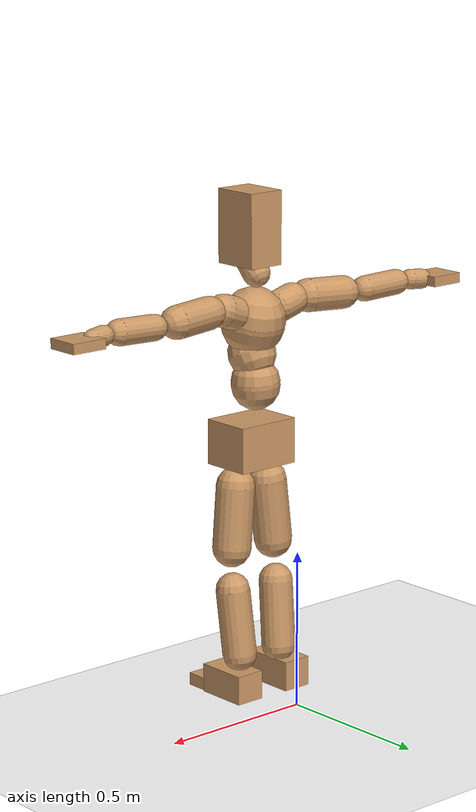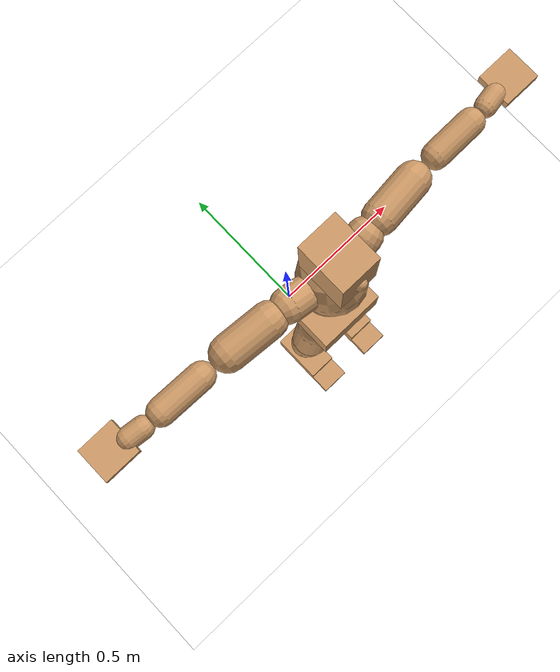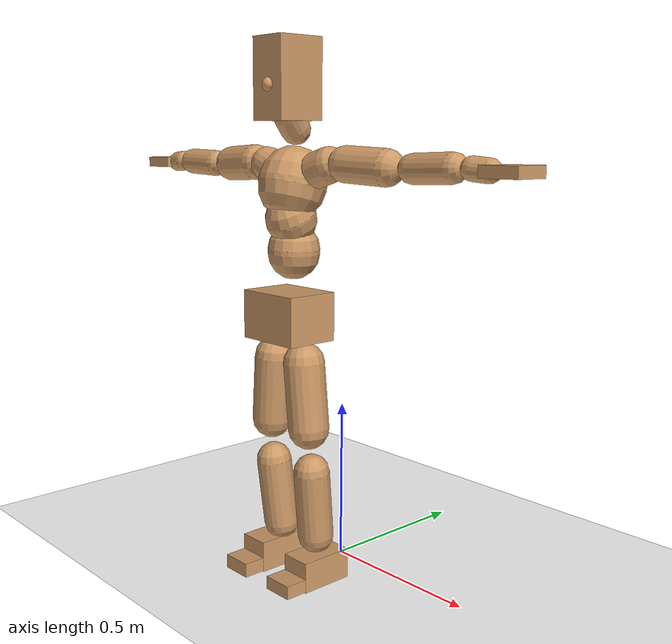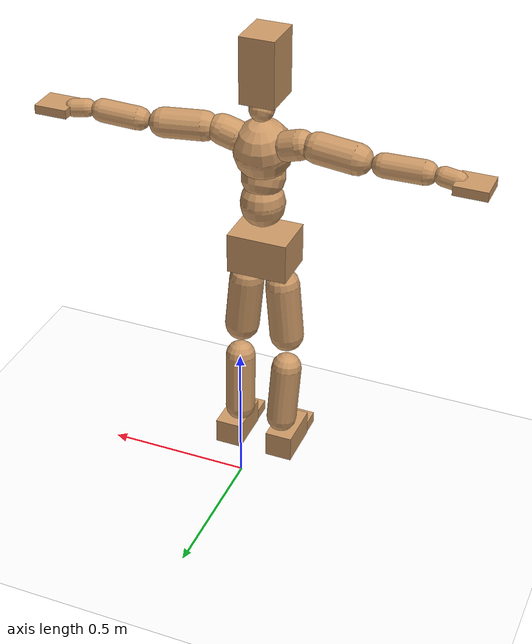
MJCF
<mujoco model="humanoid">
  <option integrator="implicitfast" />

  <visual>
    <global offwidth="1280" offheight="960" />
    <headlight active="1" ambient="0.34 0.34 0.34" diffuse="0.5 0.5 0.5" />
  </visual>

  <default>
    <joint damping="2" stiffness="2" armature="0.01" limited="true" solimplimit="0 .99 .01" />
    <geom condim="1" friction="0.7 0.005 0.0001" solimp=".99 .99 .003" solref="0.015 1" margin="0.001" rgba="0.8 0.6 .4 1" />
    <default class="smplcontact">
      <geom condim="3" friction="1. 0.005 0.0001" solref="0.015 1" solimp="0.98 0.98 0.001" priority="1" />
    </default>
    <default class="stiff_medium">
      <joint stiffness="10" />
    </default>
    <default class="stiff_medium_higher">
      <joint stiffness="50" />
    </default>
    <default class="stiff_high">
      <joint stiffness="100" />
    </default>
  </default>

  <asset>
    <texture type="skybox" builtin="gradient" rgb1="0.99 0.99 0.99" rgb2="0.608 0.828 0.892" width="100" />
    <texture builtin="flat" height="1278" mark="cross" markrgb="1 1 1" name="texgeom" random="0.01" rgb1="0.8 0.6 0.4" rgb2="0.8 0.6 0.4" type="cube" width="127" />
    <texture name="texplane" type="2d" builtin="checker" markrgb="1 1 1" rgb1="0.756 0.772 0.76" rgb2="0.6 0.6 0.6" width="100" height="100" />
    <material name="MatPlane" reflectance="0.5" texture="texplane" texrepeat="1 1" texuniform="true" />
    <material name="geom" texture="texgeom" texuniform="true" />
  </asset>

  <worldbody>
    <light name="tracking_light" pos="0 0 7" dir="0 0 -1" directional="true" cutoff="100" exponent="1" diffuse="1 1 1" specular="0.1 0.1 0.1" mode="trackcom" />
    <camera name="back" pos="0 3 2.4" xyaxes="-1 0 0 0 -1 2" mode="trackcom" />
    <camera name="side" pos="-3 0 2.4" xyaxes="0 -1 0 1 0 2" mode="trackcom" />
    <camera name="front_side" pos="-2.8 -2.8 0.8" xyaxes="0.5 -0.5 0 0.1 0.1 1" mode="trackcom" />
    <geom condim="3" name="floor" pos="0 0 0" rgba="1 1 1 1" size="100 100 .2" type="plane" material="MatPlane" />
    <body name="Pelvis" pos="-0.0018 -0.2233 0.825587" euler="90 0 0">
      <site name="Pelvis" size="0.01" />
      <freejoint name="Pelvis" />
      <geom type="box" pos="-0.0000 -0.0121 -0.0055" size="0.1069 0.0722 0.083" quat="1.0000 0.0000 0.0000 0.0000" density="3165.830099" name="Pelvis" />
      <body name="L_Hip" pos="0.0608125 -0.079975 -0.00595">
        <joint name="L_Hip_x" type="hinge" pos="0 0 0" axis="1 0 0" stiffness="8.018564387755102" range="-160.0 22.92" class="stiff_medium" damping="11.360360262787497" armature="0.007153277434128084"/>
        <joint name="L_Hip_y" type="hinge" pos="0 0 0" axis="0 1 0" stiffness="8.040343265306122" range="-70.0 70.0" class="stiff_medium" damping="8.207855033549667" armature="0.008378856726485999"/>
        <joint name="L_Hip_z" type="hinge" pos="0 0 0" axis="0 0 1" stiffness="8.038478673469386" range="-28.65 90.0" class="stiff_medium" damping="7.5819916374645935" armature="0.007151427468522717"/>
        <geom type="capsule" density="2040.816327" fromto="0.0060375 -0.065625 -0.0007875 0.023975 -0.262675 -0.00315" size="0.0615" name="L_Hip" />
        <body name="L_Knee" pos="0.0300125 -0.3283 -0.0039375">
          <joint name="L_Knee_x" type="hinge" pos="0 0 0" axis="1 0 0" range="-5.16 171.89" damping="6.187481263356624" armature="0.007345812746914755" stiffness="1.6286882448979592"/>
          <joint name="L_Knee_y" type="hinge" pos="0 0 0" axis="0 1 0" range="-4.58 6.88" damping="6.664577128501182" armature="0.00860057196827575" stiffness="1.6138675306122447"/>
          <joint name="L_Knee_z" type="hinge" pos="0 0 0" axis="0 0 1" range="-6.88 4.58" damping="6.195974658750661" armature="0.007336542514311982" stiffness="1.635226244897959"/>
          <geom type="capsule" density="1234.567901" fromto="-0.0023625 -0.06965 -0.0076125 -0.0095375 -0.2786 -0.030625" size="0.0541" name="L_Knee" />
          <body name="L_Ankle" pos="-0.0119 -0.34825 -0.0382375">
            <joint name="L_Ankle_x" type="hinge" pos="0 0 0" axis="1 0 0" range="-45.84 45.84" class="stiff_medium" damping="5.161808139893069" armature="0.008458478225834296" stiffness="8.750018673469388"/>
            <joint name="L_Ankle_y" type="hinge" pos="0 0 0" axis="0 1 0" range="-74.48 22.92" class="stiff_medium" damping="2.5896377165389355" armature="0.008515827848834853" stiffness="8.750011836734695"/>
            <joint name="L_Ankle_z" type="hinge" pos="0 0 0" axis="0 0 1" range="-4.58 4.58" class="stiff_medium" damping="5.292201995620525" armature="0.008891238718238055" stiffness="8.75"/>
            <geom type="box" pos="0.0203875 -0.0209125 0.021175" size="0.0483 0.0464 0.085" quat="1.0000 0.0000 0.0000 0.0000" density="449.071558" name="L_Ankle" class="smplcontact" />
            <body name="L_Toe" pos="0.0231 -0.048825 0.104388">
              <joint name="L_Toe_x" type="hinge" pos="0 0 0" axis="1 0 0" range="-91.67 22.92" armature="0.00910893458259095" damping="1.7855327227208222" stiffness="1.75"/>
              <joint name="L_Toe_y" type="hinge" pos="0 0 0" axis="0 1 0" range="-4.58 4.58" armature="0.009372172477213336" damping="1.811148908020726" stiffness="1.75"/>
              <joint name="L_Toe_z" type="hinge" pos="0 0 0" axis="0 0 1" range="-4.58 4.58" armature="0.009904425331423721" damping="1.8618670376797326" stiffness="1.75"/>
              <geom type="box" pos="-0.002625 0.0048125 0.0217" size="0.0478 0.02 0.0496" quat="1.0000 0.0000 0.0000 0.0000" density="423.206892" name="L_Toe" class="smplcontact" />
            </body>
          </body>
        </body>
      </body>
      <body name="R_Hip" pos="-0.0592375 -0.0791875 -0.0037625">
        <joint name="R_Hip_x" type="hinge" pos="0 0 0" axis="1 0 0" stiffness="8.018564387755102" range="-160.0 22.92" class="stiff_medium" damping="11.360360262787497" armature="0.007153277434128084"/>
        <joint name="R_Hip_y" type="hinge" pos="0 0 0" axis="0 1 0" stiffness="8.040343265306122" range="-70.0 70.0" class="stiff_medium" damping="8.207855033549667" armature="0.008378856726485999"/>
        <joint name="R_Hip_z" type="hinge" pos="0 0 0" axis="0 0 1" stiffness="8.038478673469386" range="-90.0 28.65" class="stiff_medium" damping="7.5819916374645935" armature="0.007151427468522717"/>
        <geom type="capsule" density="2040.816327" fromto="-0.0067375 -0.0669375 -0.001575 -0.026775 -0.267838 -0.0062125" size="0.0606" name="R_Hip" />
        <body name="R_Knee" pos="-0.0335125 -0.334775 -0.0077875">
          <joint name="R_Knee_x" type="hinge" pos="0 0 0" axis="1 0 0" range="-5.16 171.89" damping="6.187481263356624" armature="0.007345812746914755" stiffness="1.6286882448979592"/>
          <joint name="R_Knee_y" type="hinge" pos="0 0 0" axis="0 1 0" range="-6.88 4.58" damping="6.664577128501182" armature="0.00860057196827575" stiffness="1.6138675306122447"/>
          <joint name="R_Knee_z" type="hinge" pos="0 0 0" axis="0 0 1" range="-4.58 6.88" damping="6.195974658750661" armature="0.007336542514311982" stiffness="1.635226244897959"/>
          <geom type="capsule" density="1234.567901" fromto="0.0028 -0.0697375 -0.0074375 0.011025 -0.278863 -0.029575" size="0.0541" name="R_Knee" />
          <body name="R_Ankle" pos="0.013825 -0.3486 -0.0370125">
            <joint name="R_Ankle_x" type="hinge" pos="0 0 0" axis="1 0 0" range="-45.84 45.84" class="stiff_medium" damping="5.161808139893069" armature="0.008458478225834296" stiffness="8.750018673469388"/>
            <joint name="R_Ankle_y" type="hinge" pos="0 0 0" axis="0 1 0" range="-22.92 74.48" class="stiff_medium" damping="2.5896377165389355" armature="0.008515827848834853" stiffness="8.750011836734695"/>
            <joint name="R_Ankle_z" type="hinge" pos="0 0 0" axis="0 0 1" range="-4.58 4.58" class="stiff_medium" damping="5.292201995620525" armature="0.008891238718238055" stiffness="8.75"/>
            <geom type="box" pos="-0.01855 -0.015225 0.0224" size="0.0483 0.0478 0.0865" quat="1.0000 0.0000 0.0000 0.0000" density="434.700981" name="R_Ankle" class="smplcontact" />
            <body name="R_Toe" pos="-0.022225 -0.0420875 0.107888">
              <joint name="R_Toe_x" type="hinge" pos="0 0 0" axis="1 0 0" range="-91.67 22.92" armature="0.00910893458259095" damping="1.7855327227208222" stiffness="1.75"/>
              <joint name="R_Toe_y" type="hinge" pos="0 0 0" axis="0 1 0" range="-4.58 4.58" armature="0.009372172477213336" damping="1.811148908020726" stiffness="1.75"/>
              <joint name="R_Toe_z" type="hinge" pos="0 0 0" axis="0 0 1" range="-4.58 4.58" armature="0.009904425331423721" damping="1.8618670376797326" stiffness="1.75"/>
              <geom type="box" pos="0.003675 0.0039375 0.0198625" size="0.0479 0.0216 0.0493" quat="1.0000 0.0000 0.0000 0.0000" density="407.384095" name="R_Toe" class="smplcontact" />
            </body>
          </body>
        </body>
      </body>
      <body name="Torso" pos="-0.0025 0.109 -0.0267">
        <joint name="Torso_x" type="hinge" pos="0 0 0" axis="1 0 0" range="-25.78 57.3" class="stiff_medium" damping="14.377725126950708" armature="0.009518929822817199" stiffness="9.651831020408164"/>
        <joint name="Torso_y" type="hinge" pos="0 0 0" axis="0 1 0" range="-57.3 57.3" class="stiff_high" damping="17.047281200761137" armature="0.007489541703378379" stiffness="97.00519999999999"/>
        <joint name="Torso_z" type="hinge" pos="0 0 0" axis="0 0 1" range="-34.38 34.38" class="stiff_high" damping="18.565365135129564" armature="0.00882522634633187" stiffness="97.63851063829787"/>
        <geom type="capsule" density="2040.816327" fromto="0.0025 0.0608 0.0005 0.003 0.0743 0.0006" size="0.0769" name="Torso" />
        <body name="Spine" pos="0.0055 0.1352 0.0011">
          <joint name="Spine_x" type="hinge" pos="0 0 0" axis="1 0 0" stiffness="9.58583163265306" range="-25.78 57.3" class="stiff_medium" damping="14.269183612083738" armature="0.009440303089812764"/>
          <joint name="Spine_y" type="hinge" pos="0 0 0" axis="0 1 0" stiffness="9.576922244897958" range="-57.3 57.3" class="stiff_high" damping="6.767385718688831" armature="0.007471983870182018"/>
          <joint name="Spine_z" type="hinge" pos="0 0 0" axis="0 0 1" stiffness="19.01161469387755" range="-34.38 34.38" class="stiff_high" damping="10.689541255547073" armature="0.00834769619738186"/>
          <geom type="capsule" density="2040.816327" fromto="0.0007 0.0238 0.0114 0.0008 0.0291 0.014" size="0.0755" name="Spine" />
          <body name="Chest" pos="0.0015 0.0529 0.0254">
            <joint name="Chest_x" type="hinge" pos="0 0 0" axis="1 0 0" stiffness="9.387211020408163" range="-25.78 57.3" class="stiff_medium" damping="14.087997898862083" armature="0.00939678861979144"/>
            <joint name="Chest_y" type="hinge" pos="0 0 0" axis="0 1 0" stiffness="8.88616191489362" range="-57.3 57.3" class="stiff_high" damping="6.5161693940165115" armature="0.00746604382925993"/>
            <joint name="Chest_z" type="hinge" pos="0 0 0" axis="0 0 1" stiffness="18.95676244897959" range="-34.38 34.38" class="stiff_high" damping="10.53982249103985" armature="0.008138979020284567"/>
            <geom type="capsule" density="2040.816327" fromto="-0.0009 0.0682 -0.0173 -0.001 0.0833 -0.0212" size="0.1002" name="Chest" />
            <body name="Neck" pos="-0.0028 0.2139 -0.0429">
              <joint name="Neck_x" type="hinge" pos="0 0 0" axis="1 0 0" range="-28.65 57.3" class="stiff_medium_higher" damping="10.000000000000016" armature="0.010000000000000033" stiffness="50.0"/>
              <joint name="Neck_y" type="hinge" pos="0 0 0" axis="0 1 0" range="-40.11 40.11" class="stiff_medium_higher" damping="10.0" armature="0.01" stiffness="50.0"/>
              <joint name="Neck_z" type="hinge" pos="0 0 0" axis="0 0 1" range="-40.11 40.11" class="stiff_medium_higher" damping="10.000000000000004" armature="0.010000000000000009" stiffness="50.0"/>
              <geom type="capsule" density="1000" fromto="0.001 0.013 0.0103 0.0041 0.052 0.0411" size="0.0436" name="Neck" />
              <body name="Head" pos="0.0052 0.065 0.0513">
                <joint name="Head_x" type="hinge" pos="0 0 0" axis="1 0 0" range="-28.65 57.3" class="stiff_medium_higher" damping="2.0000000000000053" armature="0.010000000000000054" stiffness="50.0"/>
                <joint name="Head_y" type="hinge" pos="0 0 0" axis="0 1 0" range="-40.11 40.11" class="stiff_medium_higher" damping="1.9999999999999998" armature="0.009999999999999998" stiffness="50.0"/>
                <joint name="Head_z" type="hinge" pos="0 0 0" axis="0 0 1" range="-40.11 40.11" class="stiff_medium_higher" damping="2.000000000000003" armature="0.010000000000000033" stiffness="50.0"/>
                <geom type="box" pos="-0.0042 0.0876 -0.0116" size="0.0606 0.1154 0.076" quat="1.0000 0.0000 0.0000 0.0000" density="1018.069894" name="Head" />
                <geom type="capsule" name="nose" size="0.02 0.01" pos="0 0.07 0.05" quat="1 0 0 0" mass="0" contype="0" conaffinity="0" />
              </body>
            </body>
            <body name="L_Thorax" pos="0.069935 0.108009 -0.0302637">
              <joint name="L_Thorax_x" type="hinge" pos="0 0 0" axis="1 0 0" range="-10.89 4.58" class="stiff_medium_higher" damping="16.50367442936437" armature="0.008237289712880775" stiffness="41.33205204081632"/>
              <joint name="L_Thorax_y" type="hinge" pos="0 0 0" axis="0 1 0" range="-28.65 17.19" class="stiff_medium_higher" damping="15.615380485833974" armature="0.007397181758642918" stiffness="41.2049"/>
              <joint name="L_Thorax_z" type="hinge" pos="0 0 0" axis="0 0 1" range="-31.51 40.11" class="stiff_medium_higher" damping="15.614845288813932" armature="0.007396422580499301" stiffness="41.206304591836734"/>
              <geom type="capsule" density="1000" fromto="0.0161525 0.00541375 -0.0015975 0.06461 0.021655 -0.00630125" size="0.0521" name="L_Thorax" />
              <body name="L_Shoulder" pos="0.0807625 0.0270687 -0.00789875">
                <joint name="L_Shoulder_x" type="hinge" pos="0 0 0" axis="1 0 0" range="-97.4 97.4" class="stiff_medium" damping="5.05322270316849" armature="0.008561219507331293" stiffness="8.28511887755102"/>
                <joint name="L_Shoulder_y" type="hinge" pos="0 0 0" axis="0 1 0" range="-108.86 80.21" class="stiff_medium" damping="4.696052433643626" armature="0.007424828192243072" stiffness="8.25043724489796"/>
                <joint name="L_Shoulder_z" type="hinge" pos="0 0 0" axis="0 0 1" range="-97.4 85.94" class="stiff_medium" damping="4.696316861704075" armature="0.0074238227073570905" stiffness="8.252483979591837"/>
                <geom type="capsule" density="1000" fromto="0.0460612 -0.0023075 -0.00488125 0.184334 -0.0090525 -0.019525" size="0.0517" name="L_Shoulder" />
                <body name="L_Elbow" pos="0.230395 -0.01136 -0.0244062">
                  <joint name="L_Elbow_x" type="hinge" pos="0 0 0" axis="1 0 0" range="-17.19 4.58" damping="4.35790590630552" armature="0.009089595760700358" stiffness="1.6714797346938777"/>
                  <joint name="L_Elbow_y" type="hinge" pos="0 0 0" axis="0 1 0" range="-180.0 17.19" damping="3.973960072278748" armature="0.0075599991822537654" stiffness="1.6711492448979592"/>
                  <joint name="L_Elbow_z" type="hinge" pos="0 0 0" axis="0 0 1" range="-100.84 4.58" damping="3.973240806942333" armature="0.007554721526974216" stiffness="1.671711387755102"/>
                  <geom type="capsule" density="1000" fromto="0.0441975 0.0015975 -0.0001775 0.176967 0.00639 -0.00079875" size="0.0405" name="L_Elbow" />
                  <body name="L_Wrist" pos="0.221165 0.0079875 -0.001065">
                    <joint name="L_Wrist_x" type="hinge" pos="0 0 0" axis="1 0 0" range="-180.0 22.92" armature="0.009268388983615802" damping="1.7953441559357446" stiffness="1.738846224489796"/>
                    <joint name="L_Wrist_y" type="hinge" pos="0 0 0" axis="0 1 0" range="-17.19 17.19" armature="0.008039907338787613" damping="1.6695812073111218" stiffness="1.7335407551020405"/>
                    <joint name="L_Wrist_z" type="hinge" pos="0 0 0" axis="0 0 1" range="-22.92 22.92" armature="0.007970783232335098" damping="1.6634142634625968" stiffness="1.7356807551020408"/>
                    <geom type="capsule" density="1000" fromto="0.01491 -0.00142 -0.0026625 0.05964 -0.00576875 -0.01065" size="0.0318" name="L_Wrist" class="smplcontact" />
                    <body name="L_Hand" pos="0.07455 -0.0072775 -0.0132237">
                      <joint name="L_Hand_x" type="hinge" pos="0 0 0" axis="1 0 0" range="-17.19 17.19" armature="0.009907489981019584" damping="1.8754085109863823" stiffness="1.7749990612244897"/>
                      <joint name="L_Hand_y" type="hinge" pos="0 0 0" axis="0 1 0" range="-51.57 51.57" armature="0.008881214164335025" damping="1.775620827934784" stiffness="1.7749990408163265"/>
                      <joint name="L_Hand_z" type="hinge" pos="0 0 0" axis="0 0 1" range="-91.67 91.67" armature="0.008607646402111386" damping="1.7480597104276108" stiffness="1.7749990000000002"/>
                      <geom type="box" pos="0.0437537 0.0008875 -0.0051475" size="0.0585 0.0158 0.0538" quat="1.0000 0.0000 0.0000 0.0000" density="400.552564" name="L_Hand" class="smplcontact" />
                    </body>
                  </body>
                </body>
              </body>
            </body>
            <body name="R_Thorax" pos="-0.0725975 0.105435 -0.0342575">
              <joint name="R_Thorax_x" type="hinge" pos="0 0 0" axis="1 0 0" range="-10.89 4.58" class="stiff_medium_higher" damping="16.50367442936437" armature="0.008237289712880775" stiffness="41.33205204081632"/>
              <joint name="R_Thorax_y" type="hinge" pos="0 0 0" axis="0 1 0" range="-17.19 28.65" class="stiff_medium_higher" damping="15.615380485833974" armature="0.007397181758642918" stiffness="41.2049"/>
              <joint name="R_Thorax_z" type="hinge" pos="0 0 0" axis="0 0 1" range="-40.11 31.51" class="stiff_medium_higher" damping="15.614845288813932" armature="0.007396422580499301" stiffness="41.206304591836734"/>
              <geom type="capsule" density="1000" fromto="-0.01704 0.00576875 -0.0015975 -0.06816 0.023075 -0.00647875" size="0.0511" name="R_Thorax" />
              <body name="R_Shoulder" pos="-0.0852 0.0289325 -0.00807625">
                <joint name="R_Shoulder_x" type="hinge" pos="0 0 0" axis="1 0 0" range="-97.4 97.4" class="stiff_medium" damping="5.05322270316849" armature="0.008561219507331293" stiffness="8.28511887755102"/>
                <joint name="R_Shoulder_y" type="hinge" pos="0 0 0" axis="0 1 0" range="-80.21 108.86" class="stiff_medium" damping="4.696052433643626" armature="0.007424828192243072" stiffness="8.25043724489796"/>
                <joint name="R_Shoulder_z" type="hinge" pos="0 0 0" axis="0 0 1" range="-85.94 97.4" class="stiff_medium" damping="4.696316861704075" armature="0.0074238227073570905" stiffness="8.252483979591837"/>
                <geom type="capsule" density="1000" fromto="-0.0449963 -0.00239625 -0.00381625 -0.180163 -0.00949625 -0.0151763" size="0.0531" name="R_Shoulder" />
                <body name="R_Elbow" pos="-0.225159 -0.0118037 -0.0189925">
                  <joint name="R_Elbow_x" type="hinge" pos="0 0 0" axis="1 0 0" range="-17.19 4.58" damping="4.35790590630552" armature="0.009089595760700358" stiffness="1.6714797346938777"/>
                  <joint name="R_Elbow_y" type="hinge" pos="0 0 0" axis="0 1 0" range="-17.19 180.0" damping="3.973960072278748" armature="0.0075599991822537654" stiffness="1.6711492448979592"/>
                  <joint name="R_Elbow_z" type="hinge" pos="0 0 0" axis="0 0 1" range="-4.58 100.84" damping="3.973240806942333" armature="0.007554721526974216" stiffness="1.671711387755102"/>
                  <geom type="capsule" density="1000" fromto="-0.0453512 0.00142 -0.00097625 -0.181227 0.0055025 -0.003905" size="0.0408" name="R_Elbow" />
                  <body name="R_Wrist" pos="-0.226579 0.0069225 -0.00497">
                    <joint name="R_Wrist_x" type="hinge" pos="0 0 0" axis="1 0 0" range="-180.0 22.92" armature="0.009268388983615802" damping="1.7953441559357446" stiffness="1.738846224489796"/>
                    <joint name="R_Wrist_y" type="hinge" pos="0 0 0" axis="0 1 0" range="-17.19 17.19" armature="0.008039907338787613" damping="1.6695812073111218" stiffness="1.7335407551020405"/>
                    <joint name="R_Wrist_z" type="hinge" pos="0 0 0" axis="0 0 1" range="-22.92 22.92" armature="0.007970783232335098" damping="1.6634142634625968" stiffness="1.7356807551020408"/>
                    <geom type="capsule" density="1000" fromto="-0.0149987 -0.001065 -0.00186375 -0.0600837 -0.00434875 -0.00736625" size="0.0326" name="R_Wrist" class="smplcontact" />
                    <body name="R_Hand" pos="-0.0750825 -0.00541375 -0.00914125">
                      <joint name="R_Hand_x" type="hinge" pos="0 0 0" axis="1 0 0" range="-17.19 17.19" armature="0.009907489981019584" damping="1.8754085109863823" stiffness="1.7749990612244897"/>
                      <joint name="R_Hand_y" type="hinge" pos="0 0 0" axis="0 1 0" range="-51.57 51.57" armature="0.008881214164335025" damping="1.775620827934784" stiffness="1.7749990408163265"/>
                      <joint name="R_Hand_z" type="hinge" pos="0 0 0" axis="0 0 1" range="-91.67 91.67" armature="0.008607646402111386" damping="1.7480597104276108" stiffness="1.7749990000000002"/>
                      <geom type="box" pos="-0.0410025 -0.00079875 -0.00701125" size="0.0569 0.0164 0.0546" quat="1.0000 0.0000 0.0000 0.0000" density="403.679611" name="R_Hand" class="smplcontact" />
                    </body>
                  </body>
                </body>
              </body>
            </body>
          </body>
        </body>
      </body>
    </body>
  </worldbody>
  <actuator>
    <general name="L_Hip_x" joint="L_Hip_x" biastype="affine" gainprm="230.3974619502181" biasprm="-172.65954561631258 -144.33415897959185 -1.5147147017049996" ctrllimited="true" ctrlrange="-1 1" forcerange="-288.6683179591837 288.6683179591837" />
    <general name="L_Hip_y" joint="L_Hip_y" biastype="affine" gainprm="176.8163833423812" biasprm="0.0 -144.7261787755102 -1.6415710067099334" ctrllimited="true" ctrlrange="-1 1" forcerange="-289.4523575510204 289.4523575510204" />
    <general name="L_Hip_z" joint="L_Hip_z" biastype="affine" gainprm="149.81713355526176" biasprm="77.4654963642251 -144.69261612244895 -1.5163983274929187" ctrllimited="true" ctrlrange="-1 1" forcerange="-289.3852322448979 289.3852322448979" />
    <general name="L_Knee_x" joint="L_Knee_x" biastype="affine" gainprm="226.4768283011216" biasprm="213.27580673621011 -146.58194204081633 -1.546870315839156" ctrllimited="true" ctrlrange="-1 1" forcerange="-293.16388408163266 293.16388408163266" />
    <general name="L_Knee_y" joint="L_Knee_y" biastype="affine" gainprm="14.525877693080384" biasprm="2.915315767372154 -145.24807775510203 -1.6661442821252954" ctrllimited="true" ctrlrange="-1 1" forcerange="-290.49615551020406 290.49615551020406" />
    <general name="L_Knee_z" joint="L_Knee_z" biastype="affine" gainprm="14.718120281465588" biasprm="-2.953898485808975 -147.17036204081631 -1.5489936646876652" ctrllimited="true" ctrlrange="-1 1" forcerange="-294.34072408163263 294.34072408163263" />
    <general name="L_Ankle_x" joint="L_Ankle_x" biastype="affine" gainprm="63.0047751266266" biasprm="0.0 -78.75016806122449 -1.7206027132976898" ctrllimited="true" ctrlrange="-1 1" forcerange="-157.50033612244897 157.50033612244897" />
    <general name="L_Ankle_y" joint="L_Ankle_y" biastype="affine" gainprm="66.93564902394152" biasprm="-35.43328607468609 -78.75010653061226 -1.7264251443592904" ctrllimited="true" ctrlrange="-1 1" forcerange="-157.5002130612245 157.5002130612245" />
    <general name="L_Ankle_z" joint="L_Ankle_z" biastype="affine" gainprm="6.294966279630548" biasprm="0.0 -78.75 -1.7640673318735085" ctrllimited="true" ctrlrange="-1 1" forcerange="-157.5 157.5" />
    <general name="L_Toe_x" joint="L_Toe_x" biastype="affine" gainprm="62.999142880599514" biasprm="-37.797286613502195 -63.0 -0.7142130890883289" ctrllimited="true" ctrlrange="-1 1" forcerange="-126.0 126.0" />
    <general name="L_Toe_y" joint="L_Toe_y" biastype="affine" gainprm="5.035973023704439" biasprm="0.0 -63.0 -0.7244595632082904" ctrllimited="true" ctrlrange="-1 1" forcerange="-126.0 126.0" />
    <general name="L_Toe_z" joint="L_Toe_z" biastype="affine" gainprm="5.035973023704439" biasprm="0.0 -63.0 -0.7447468150718931" ctrllimited="true" ctrlrange="-1 1" forcerange="-126.0 126.0" />
    <general name="R_Hip_x" joint="R_Hip_x" biastype="affine" gainprm="230.3974619502181" biasprm="-172.65954561631258 -144.33415897959185 -1.5147147017049996" ctrllimited="true" ctrlrange="-1 1" forcerange="-288.6683179591837 288.6683179591837" />
    <general name="R_Hip_y" joint="R_Hip_y" biastype="affine" gainprm="176.8163833423812" biasprm="0.0 -144.7261787755102 -1.6415710067099334" ctrllimited="true" ctrlrange="-1 1" forcerange="-289.4523575510204 289.4523575510204" />
    <general name="R_Hip_z" joint="R_Hip_z" biastype="affine" gainprm="149.81713355526176" biasprm="-77.4654963642251 -144.69261612244895 -1.5163983274929187" ctrllimited="true" ctrlrange="-1 1" forcerange="-289.3852322448979 289.3852322448979" />
    <general name="R_Knee_x" joint="R_Knee_x" biastype="affine" gainprm="226.4768283011216" biasprm="213.27580673621011 -146.58194204081633 -1.546870315839156" ctrllimited="true" ctrlrange="-1 1" forcerange="-293.16388408163266 293.16388408163266" />
    <general name="R_Knee_y" joint="R_Knee_y" biastype="affine" gainprm="14.525877693080384" biasprm="-2.915315767372154 -145.24807775510203 -1.6661442821252954" ctrllimited="true" ctrlrange="-1 1" forcerange="-290.49615551020406 290.49615551020406" />
    <general name="R_Knee_z" joint="R_Knee_z" biastype="affine" gainprm="14.718120281465588" biasprm="2.953898485808975 -147.17036204081631 -1.5489936646876652" ctrllimited="true" ctrlrange="-1 1" forcerange="-294.34072408163263 294.34072408163263" />
    <general name="R_Ankle_x" joint="R_Ankle_x" biastype="affine" gainprm="63.0047751266266" biasprm="0.0 -78.75016806122449 -1.7206027132976898" ctrllimited="true" ctrlrange="-1 1" forcerange="-157.50033612244897 157.50033612244897" />
    <general name="R_Ankle_y" joint="R_Ankle_y" biastype="affine" gainprm="66.93564902394152" biasprm="35.43328607468609 -78.75010653061226 -1.7264251443592904" ctrllimited="true" ctrlrange="-1 1" forcerange="-157.5002130612245 157.5002130612245" />
    <general name="R_Ankle_z" joint="R_Ankle_z" biastype="affine" gainprm="6.294966279630548" biasprm="0.0 -78.75 -1.7640673318735085" ctrllimited="true" ctrlrange="-1 1" forcerange="-157.5 157.5" />
    <general name="R_Toe_x" joint="R_Toe_x" biastype="affine" gainprm="62.999142880599514" biasprm="-37.797286613502195 -63.0 -0.7142130890883289" ctrllimited="true" ctrlrange="-1 1" forcerange="-126.0 126.0" />
    <general name="R_Toe_y" joint="R_Toe_y" biastype="affine" gainprm="5.035973023704439" biasprm="0.0 -63.0 -0.7244595632082904" ctrllimited="true" ctrlrange="-1 1" forcerange="-126.0 126.0" />
    <general name="R_Toe_z" joint="R_Toe_z" biastype="affine" gainprm="5.035973023704439" biasprm="0.0 -63.0 -0.7447468150718931" ctrllimited="true" ctrlrange="-1 1" forcerange="-126.0 126.0" />
    <general name="Torso_x" joint="Torso_x" biastype="affine" gainprm="167.94412321258363" biasprm="63.71688449278569 -231.64394448979593 -3.834060033853522" ctrllimited="true" ctrlrange="-1 1" forcerange="-347.4659167346939 347.4659167346939" />
    <general name="Torso_y" joint="Torso_y" biastype="affine" gainprm="232.82962929152654" biasprm="0.0 -232.81248 -3.4094562401522275" ctrllimited="true" ctrlrange="-1 1" forcerange="-349.21871999999996 349.21871999999996" />
    <general name="Torso_z" joint="Torso_z" biastype="affine" gainprm="140.60981207084777" biasprm="0.0 -234.33242553191488 -3.7130730270259127" ctrllimited="true" ctrlrange="-1 1" forcerange="-351.49863829787233 351.49863829787233" />
    <general name="Spine_x" joint="Spine_x" biastype="affine" gainprm="166.79571838808337" biasprm="63.28118733259974 -230.05995918367344 -3.8051156298889968" ctrllimited="true" ctrlrange="-1 1" forcerange="-345.0899387755102 345.0899387755102" />
    <general name="Spine_y" joint="Spine_y" biastype="affine" gainprm="229.8630646638908" biasprm="0.0 -229.846133877551 -3.3836928593444155" ctrllimited="true" ctrlrange="-1 1" forcerange="-344.76920081632653 344.76920081632653" />
    <general name="Spine_z" joint="Spine_z" biastype="affine" gainprm="136.89370883443928" biasprm="0.0 -228.1393763265306 -3.5631804185156914" ctrllimited="true" ctrlrange="-1 1" forcerange="-342.2090644897959 342.2090644897959" />
    <general name="Chest_x" joint="Chest_x" biastype="affine" gainprm="163.33967315636679" biasprm="61.969986734336544 -225.29306448979594 -3.7567994396965556" ctrllimited="true" ctrlrange="-1 1" forcerange="-337.9395967346939 337.9395967346939" />
    <general name="Chest_y" joint="Chest_y" biastype="affine" gainprm="213.2835955669555" biasprm="0.0 -213.26788595744688 -3.2580846970082558" ctrllimited="true" ctrlrange="-1 1" forcerange="-319.9018289361703 319.9018289361703" />
    <general name="Chest_z" joint="Chest_z" biastype="affine" gainprm="136.49874357962614" biasprm="0.0 -227.48114938775507 -3.51327416367995" ctrllimited="true" ctrlrange="-1 1" forcerange="-341.2217240816326 341.2217240816326" />
    <general name="Neck_x" joint="Neck_x" biastype="affine" gainprm="27.00198885760427" biasprm="9.000662952534757 -36.0 -0.8000000000000013" ctrllimited="true" ctrlrange="-1 1" forcerange="-72.0 72.0" />
    <general name="Neck_y" joint="Neck_y" biastype="affine" gainprm="25.20185626709732" biasprm="0.0 -36.0 -0.8" ctrllimited="true" ctrlrange="-1 1" forcerange="-72.0 72.0" />
    <general name="Neck_z" joint="Neck_z" biastype="affine" gainprm="25.20185626709732" biasprm="0.0 -36.0 -0.8000000000000004" ctrllimited="true" ctrlrange="-1 1" forcerange="-72.0 72.0" />
    <general name="Head_x" joint="Head_x" biastype="affine" gainprm="18.001325905069514" biasprm="6.000441968356505 -24.0 -0.8000000000000022" ctrllimited="true" ctrlrange="-1 1" forcerange="-48.0 48.0" />
    <general name="Head_y" joint="Head_y" biastype="affine" gainprm="16.801237511398213" biasprm="0.0 -24.0 -0.7999999999999999" ctrllimited="true" ctrlrange="-1 1" forcerange="-48.0 48.0" />
    <general name="Head_z" joint="Head_z" biastype="affine" gainprm="16.801237511398213" biasprm="0.0 -24.0 -0.8000000000000013" ctrllimited="true" ctrlrange="-1 1" forcerange="-48.0 48.0" />
    <general name="L_Thorax_x" joint="L_Thorax_x" biastype="affine" gainprm="13.391705647542844" biasprm="-5.462292348803839 -99.19692489795918 -1.3202939543491496" ctrllimited="true" ctrlrange="-1 1" forcerange="-198.39384979591836 198.39384979591836" />
    <general name="L_Thorax_y" joint="L_Thorax_y" biastype="affine" gainprm="39.55961780190927" biasprm="-9.889904450477317 -98.89176 -1.249230438866718" ctrllimited="true" ctrlrange="-1 1" forcerange="-197.78352 197.78352" />
    <general name="L_Thorax_z" joint="L_Thorax_z" biastype="affine" gainprm="61.80969474430838" biasprm="7.4219962971383975 -98.89513102040816 -1.2491876231051147" ctrllimited="true" ctrlrange="-1 1" forcerange="-197.79026204081632 197.79026204081632" />
    <general name="L_Shoulder_x" joint="L_Shoulder_x" biastype="affine" gainprm="67.60460910996468" biasprm="0.0 -39.768570612244886 -1.3475260541782643" ctrllimited="true" ctrlrange="-1 1" forcerange="-79.53714122448977 79.53714122448977" />
    <general name="L_Shoulder_y" joint="L_Shoulder_y" biastype="affine" gainprm="65.34136439993874" biasprm="-9.901253980315465 -39.6020987755102 -1.2522806489716336" ctrllimited="true" ctrlrange="-1 1" forcerange="-79.2041975510204 79.2041975510204" />
    <general name="L_Shoulder_z" joint="L_Shoulder_z" biastype="affine" gainprm="63.376831969533896" biasprm="-3.9614840971466134 -39.61192310204081 -1.2523511631210866" ctrllimited="true" ctrlrange="-1 1" forcerange="-79.22384620408162 79.22384620408162" />
    <general name="L_Elbow_x" joint="L_Elbow_x" biastype="affine" gainprm="11.43166310683652" biasprm="-6.621647761929654 -60.17327044897959 -0.6972649450088833" ctrllimited="true" ctrlrange="-1 1" forcerange="-120.34654089795919 120.34654089795919" />
    <general name="L_Elbow_y" joint="L_Elbow_y" biastype="affine" gainprm="103.52613409284974" biasprm="-85.47639277679836 -60.16137281632653 -0.6358336115645997" ctrllimited="true" ctrlrange="-1 1" forcerange="-120.32274563265307 120.32274563265307" />
    <general name="L_Elbow_z" joint="L_Elbow_z" biastype="affine" gainprm="55.364857375302314" biasprm="-50.55417540264278 -60.181609959183675 -0.6357185291107733" ctrllimited="true" ctrlrange="-1 1" forcerange="-120.36321991836735 120.36321991836735" />
    <general name="L_Wrist_x" joint="L_Wrist_x" biastype="affine" gainprm="18.475008746127838" biasprm="-14.301470401349109 -10.433077346938775 -0.7181376623742979" ctrllimited="true" ctrlrange="-1 1" forcerange="-20.86615469387755 20.86615469387755" />
    <general name="L_Wrist_y" joint="L_Wrist_y" biastype="affine" gainprm="3.120603210231214" biasprm="0.0 -10.401244530612242 -0.6678324829244487" ctrllimited="true" ctrlrange="-1 1" forcerange="-20.802489061224485 20.802489061224485" />
    <general name="L_Wrist_z" joint="L_Wrist_z" biastype="affine" gainprm="4.165940658633199" biasprm="0.0 -10.414084530612245 -0.6653657053850388" ctrllimited="true" ctrlrange="-1 1" forcerange="-20.82816906122449 20.82816906122449" />
    <general name="L_Hand_x" joint="L_Hand_x" biastype="affine" gainprm="3.1952336582294483" biasprm="0.0 -10.649994367346938 -0.750163404394553" ctrllimited="true" ctrlrange="-1 1" forcerange="-21.299988734693876 21.299988734693876" />
    <general name="L_Hand_y" joint="L_Hand_y" biastype="affine" gainprm="9.585700864476143" biasprm="0.0 -10.64999424489796 -0.7102483311739136" ctrllimited="true" ctrlrange="-1 1" forcerange="-21.29998848979592 21.29998848979592" />
    <general name="L_Hand_z" joint="L_Hand_z" biastype="affine" gainprm="17.03938681481915" biasprm="0.0 -10.649994000000001 -0.6992238841710443" ctrllimited="true" ctrlrange="-1 1" forcerange="-21.299988000000003 21.299988000000003" />
    <general name="R_Thorax_x" joint="R_Thorax_x" biastype="affine" gainprm="13.391705647542844" biasprm="-5.462292348803839 -99.19692489795918 -1.3202939543491496" ctrllimited="true" ctrlrange="-1 1" forcerange="-198.39384979591836 198.39384979591836" />
    <general name="R_Thorax_y" joint="R_Thorax_y" biastype="affine" gainprm="39.55961780190927" biasprm="9.889904450477312 -98.89176 -1.249230438866718" ctrllimited="true" ctrlrange="-1 1" forcerange="-197.78352 197.78352" />
    <general name="R_Thorax_z" joint="R_Thorax_z" biastype="affine" gainprm="61.80969474430838" biasprm="-7.4219962971383975 -98.89513102040816 -1.2491876231051147" ctrllimited="true" ctrlrange="-1 1" forcerange="-197.79026204081632 197.79026204081632" />
    <general name="R_Shoulder_x" joint="R_Shoulder_x" biastype="affine" gainprm="67.60460910996468" biasprm="0.0 -39.768570612244886 -1.3475260541782643" ctrllimited="true" ctrlrange="-1 1" forcerange="-79.53714122448977 79.53714122448977" />
    <general name="R_Shoulder_y" joint="R_Shoulder_y" biastype="affine" gainprm="65.34136439993874" biasprm="9.901253980315465 -39.6020987755102 -1.2522806489716336" ctrllimited="true" ctrlrange="-1 1" forcerange="-79.2041975510204 79.2041975510204" />
    <general name="R_Shoulder_z" joint="R_Shoulder_z" biastype="affine" gainprm="63.376831969533896" biasprm="3.9614840971466045 -39.61192310204081 -1.2523511631210866" ctrllimited="true" ctrlrange="-1 1" forcerange="-79.22384620408162 79.22384620408162" />
    <general name="R_Elbow_x" joint="R_Elbow_x" biastype="affine" gainprm="11.43166310683652" biasprm="-6.621647761929654 -60.17327044897959 -0.6972649450088833" ctrllimited="true" ctrlrange="-1 1" forcerange="-120.34654089795919 120.34654089795919" />
    <general name="R_Elbow_y" joint="R_Elbow_y" biastype="affine" gainprm="103.52613409284974" biasprm="85.47639277679836 -60.16137281632653 -0.6358336115645997" ctrllimited="true" ctrlrange="-1 1" forcerange="-120.32274563265307 120.32274563265307" />
    <general name="R_Elbow_z" joint="R_Elbow_z" biastype="affine" gainprm="55.364857375302314" biasprm="50.55417540264277 -60.181609959183675 -0.6357185291107733" ctrllimited="true" ctrlrange="-1 1" forcerange="-120.36321991836735 120.36321991836735" />
    <general name="R_Wrist_x" joint="R_Wrist_x" biastype="affine" gainprm="18.475008746127838" biasprm="-14.301470401349109 -10.433077346938775 -0.7181376623742979" ctrllimited="true" ctrlrange="-1 1" forcerange="-20.86615469387755 20.86615469387755" />
    <general name="R_Wrist_y" joint="R_Wrist_y" biastype="affine" gainprm="3.120603210231214" biasprm="0.0 -10.401244530612242 -0.6678324829244487" ctrllimited="true" ctrlrange="-1 1" forcerange="-20.802489061224485 20.802489061224485" />
    <general name="R_Wrist_z" joint="R_Wrist_z" biastype="affine" gainprm="4.165940658633199" biasprm="0.0 -10.414084530612245 -0.6653657053850388" ctrllimited="true" ctrlrange="-1 1" forcerange="-20.82816906122449 20.82816906122449" />
    <general name="R_Hand_x" joint="R_Hand_x" biastype="affine" gainprm="3.1952336582294483" biasprm="0.0 -10.649994367346938 -0.750163404394553" ctrllimited="true" ctrlrange="-1 1" forcerange="-21.299988734693876 21.299988734693876" />
    <general name="R_Hand_y" joint="R_Hand_y" biastype="affine" gainprm="9.585700864476143" biasprm="0.0 -10.64999424489796 -0.7102483311739136" ctrllimited="true" ctrlrange="-1 1" forcerange="-21.29998848979592 21.29998848979592" />
    <general name="R_Hand_z" joint="R_Hand_z" biastype="affine" gainprm="17.03938681481915" biasprm="0.0 -10.649994000000001 -0.6992238841710443" ctrllimited="true" ctrlrange="-1 1" forcerange="-21.299988000000003 21.299988000000003" />
  </actuator>
  <contact>
    <exclude body1="Torso" body2="Chest" />
    <exclude body1="Head" body2="Chest" />
    <exclude body1="R_Knee" body2="R_Toe" />
    <exclude body1="R_Knee" body2="L_Ankle" />
    <exclude body1="R_Knee" body2="L_Toe" />
    <exclude body1="L_Knee" body2="L_Toe" />
    <exclude body1="L_Knee" body2="R_Ankle" />
    <exclude body1="L_Knee" body2="R_Toe" />
    <exclude body1="L_Shoulder" body2="Chest" />
    <exclude body1="R_Shoulder" body2="Chest" />
  </contact>
  <sensor>
    <framelinvel name="sensor_Pelvis_framelinvel" objtype="xbody" objname="Pelvis" />
    <framelinvel name="sensor_L_Hip_framelinvel" objtype="xbody" objname="L_Hip" />
    <framelinvel name="sensor_L_Knee_framelinvel" objtype="xbody" objname="L_Knee" />
    <framelinvel name="sensor_L_Ankle_framelinvel" objtype="xbody" objname="L_Ankle" />
    <framelinvel name="sensor_L_Toe_framelinvel" objtype="xbody" objname="L_Toe" />
    <framelinvel name="sensor_R_Hip_framelinvel" objtype="xbody" objname="R_Hip" />
    <framelinvel name="sensor_R_Knee_framelinvel" objtype="xbody" objname="R_Knee" />
    <framelinvel name="sensor_R_Ankle_framelinvel" objtype="xbody" objname="R_Ankle" />
    <framelinvel name="sensor_R_Toe_framelinvel" objtype="xbody" objname="R_Toe" />
    <framelinvel name="sensor_Torso_framelinvel" objtype="xbody" objname="Torso" />
    <framelinvel name="sensor_Spine_framelinvel" objtype="xbody" objname="Spine" />
    <framelinvel name="sensor_Chest_framelinvel" objtype="xbody" objname="Chest" />
    <framelinvel name="sensor_Neck_framelinvel" objtype="xbody" objname="Neck" />
    <framelinvel name="sensor_Head_framelinvel" objtype="xbody" objname="Head" />
    <framelinvel name="sensor_L_Thorax_framelinvel" objtype="xbody" objname="L_Thorax" />
    <framelinvel name="sensor_L_Shoulder_framelinvel" objtype="xbody" objname="L_Shoulder" />
    <framelinvel name="sensor_L_Elbow_framelinvel" objtype="xbody" objname="L_Elbow" />
    <framelinvel name="sensor_L_Wrist_framelinvel" objtype="xbody" objname="L_Wrist" />
    <framelinvel name="sensor_L_Hand_framelinvel" objtype="xbody" objname="L_Hand" />
    <framelinvel name="sensor_R_Thorax_framelinvel" objtype="xbody" objname="R_Thorax" />
    <framelinvel name="sensor_R_Shoulder_framelinvel" objtype="xbody" objname="R_Shoulder" />
    <framelinvel name="sensor_R_Elbow_framelinvel" objtype="xbody" objname="R_Elbow" />
    <framelinvel name="sensor_R_Wrist_framelinvel" objtype="xbody" objname="R_Wrist" />
    <framelinvel name="sensor_R_Hand_framelinvel" objtype="xbody" objname="R_Hand" />
    <frameangvel name="sensor_Pelvis_frameangvel" objtype="xbody" objname="Pelvis" />
    <frameangvel name="sensor_L_Hip_frameangvel" objtype="xbody" objname="L_Hip" />
    <frameangvel name="sensor_L_Knee_frameangvel" objtype="xbody" objname="L_Knee" />
    <frameangvel name="sensor_L_Ankle_frameangvel" objtype="xbody" objname="L_Ankle" />
    <frameangvel name="sensor_L_Toe_frameangvel" objtype="xbody" objname="L_Toe" />
    <frameangvel name="sensor_R_Hip_frameangvel" objtype="xbody" objname="R_Hip" />
    <frameangvel name="sensor_R_Knee_frameangvel" objtype="xbody" objname="R_Knee" />
    <frameangvel name="sensor_R_Ankle_frameangvel" objtype="xbody" objname="R_Ankle" />
    <frameangvel name="sensor_R_Toe_frameangvel" objtype="xbody" objname="R_Toe" />
    <frameangvel name="sensor_Torso_frameangvel" objtype="xbody" objname="Torso" />
    <frameangvel name="sensor_Spine_frameangvel" objtype="xbody" objname="Spine" />
    <frameangvel name="sensor_Chest_frameangvel" objtype="xbody" objname="Chest" />
    <frameangvel name="sensor_Neck_frameangvel" objtype="xbody" objname="Neck" />
    <frameangvel name="sensor_Head_frameangvel" objtype="xbody" objname="Head" />
    <frameangvel name="sensor_L_Thorax_frameangvel" objtype="xbody" objname="L_Thorax" />
    <frameangvel name="sensor_L_Shoulder_frameangvel" objtype="xbody" objname="L_Shoulder" />
    <frameangvel name="sensor_L_Elbow_frameangvel" objtype="xbody" objname="L_Elbow" />
    <frameangvel name="sensor_L_Wrist_frameangvel" objtype="xbody" objname="L_Wrist" />
    <frameangvel name="sensor_L_Hand_frameangvel" objtype="xbody" objname="L_Hand" />
    <frameangvel name="sensor_R_Thorax_frameangvel" objtype="xbody" objname="R_Thorax" />
    <frameangvel name="sensor_R_Shoulder_frameangvel" objtype="xbody" objname="R_Shoulder" />
    <frameangvel name="sensor_R_Elbow_frameangvel" objtype="xbody" objname="R_Elbow" />
    <frameangvel name="sensor_R_Wrist_frameangvel" objtype="xbody" objname="R_Wrist" />
    <frameangvel name="sensor_R_Hand_frameangvel" objtype="xbody" objname="R_Hand" />
    <subtreelinvel name="Chest_subtreelinvel" body="Chest" />
    <gyro name="Pelvis_gyro" site="Pelvis" />
  </sensor>
</mujoco>
